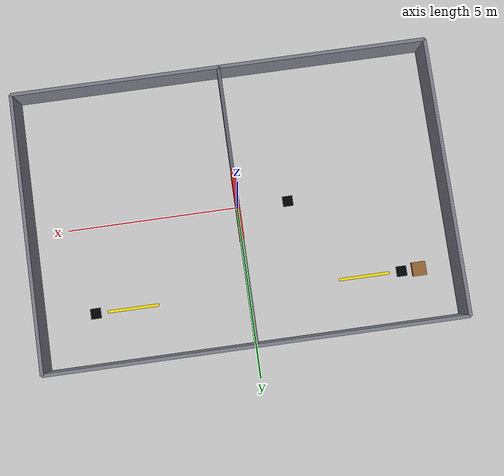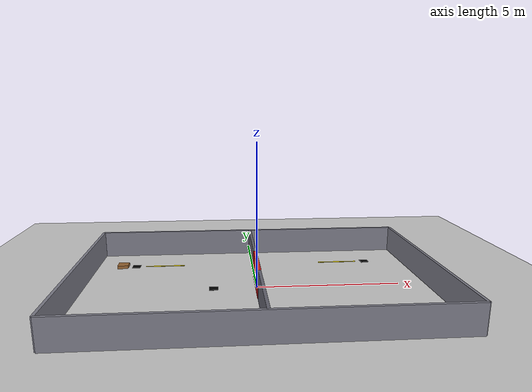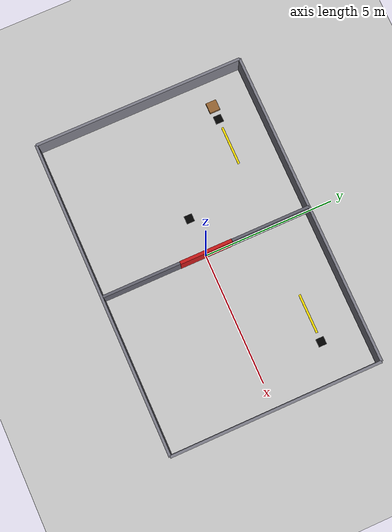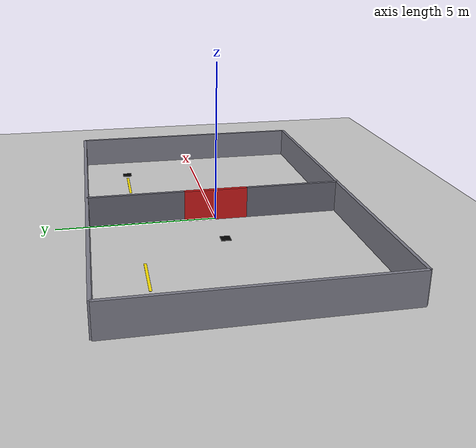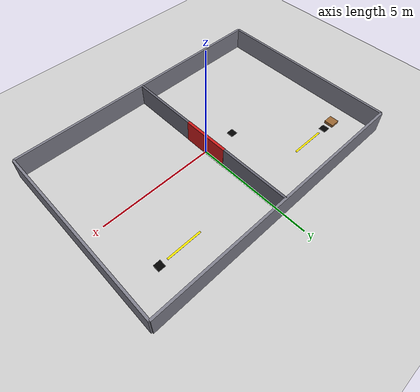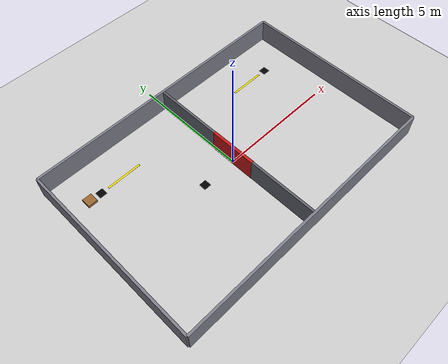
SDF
<?xml version="1.0"?>
<sdf version="1.7">
  <world name="factory">

    <include><uri>model://sun</uri></include>
    <include><uri>model://ground_plane</uri></include>

    <scene><ambient>0.6 0.6 0.6 1</ambient><background>0.7 0.7 0.7 1</background></scene>

    <physics name="default" type="ode">
      <max_step_size>0.004</max_step_size>
      <real_time_factor>1.0</real_time_factor>
    </physics>

    <!-- ============ Dis duvarlar (12m x 8m saha) ============ -->
    <model name="walls">
      <static>true</static>
      <link name="link">
        <!-- kuzey -->
        <collision name="n_c"><pose>0 4 0.5 0 0 0</pose>
          <geometry><box><size>12 0.1 1</size></box></geometry></collision>
        <visual name="n_v"><pose>0 4 0.5 0 0 0</pose>
          <geometry><box><size>12 0.1 1</size></box></geometry>
          <material><ambient>0.5 0.5 0.55 1</ambient></material></visual>
        <!-- guney -->
        <collision name="s_c"><pose>0 -4 0.5 0 0 0</pose>
          <geometry><box><size>12 0.1 1</size></box></geometry></collision>
        <visual name="s_v"><pose>0 -4 0.5 0 0 0</pose>
          <geometry><box><size>12 0.1 1</size></box></geometry>
          <material><ambient>0.5 0.5 0.55 1</ambient></material></visual>
        <!-- bati -->
        <collision name="w_c"><pose>-6 0 0.5 0 0 0</pose>
          <geometry><box><size>0.1 8 1</size></box></geometry></collision>
        <visual name="w_v"><pose>-6 0 0.5 0 0 0</pose>
          <geometry><box><size>0.1 8 1</size></box></geometry>
          <material><ambient>0.5 0.5 0.55 1</ambient></material></visual>
        <!-- dogu -->
        <collision name="e_c"><pose>6 0 0.5 0 0 0</pose>
          <geometry><box><size>0.1 8 1</size></box></geometry></collision>
        <visual name="e_v"><pose>6 0 0.5 0 0 0</pose>
          <geometry><box><size>0.1 8 1</size></box></geometry>
          <material><ambient>0.5 0.5 0.55 1</ambient></material></visual>
      </link>
    </model>

    <!-- ============ Ic bolme + kapi cercevesi (orta duvar, ortada bosluk) ============ -->
    <model name="partition">
      <static>true</static>
      <link name="link">
        <collision name="p1_c"><pose>0 2.5 0.5 0 0 0</pose>
          <geometry><box><size>0.1 3 1</size></box></geometry></collision>
        <visual name="p1_v"><pose>0 2.5 0.5 0 0 0</pose>
          <geometry><box><size>0.1 3 1</size></box></geometry>
          <material><ambient>0.4 0.4 0.45 1</ambient></material></visual>
        <collision name="p2_c"><pose>0 -2.5 0.5 0 0 0</pose>
          <geometry><box><size>0.1 3 1</size></box></geometry></collision>
        <visual name="p2_v"><pose>0 -2.5 0.5 0 0 0</pose>
          <geometry><box><size>0.1 3 1</size></box></geometry>
          <material><ambient>0.4 0.4 0.45 1</ambient></material></visual>
      </link>
    </model>

    <!-- ============ Kontrollu kapi (PLC ile kontrol; prismatic surgu) ============ -->
    <model name="controlled_door">
      <pose>0 0 0.5 0 0 0</pose>
      <link name="door_link">
        <collision name="c"><geometry><box><size>0.12 2 1</size></box></geometry></collision>
        <visual name="v"><geometry><box><size>0.12 2 1</size></box></geometry>
          <material><ambient>0.8 0.1 0.1 1</ambient></material></visual>
        <inertial><mass>10</mass>
          <inertia ixx="3.5" ixy="0" ixz="0" iyy="0.1" iyz="0" izz="3.5"/></inertial>
      </link>
      <joint name="door_slide" type="prismatic">
        <parent>world</parent><child>door_link</child>
        <axis><xyz>0 1 0</xyz><limit><lower>0</lower><upper>2.0</upper></limit></axis>
      </joint>
      <!-- /factory_door/cmd (std_msgs/Float64) ile kapi acilip kapanir -->
      <plugin name="door_ctrl" filename="libgazebo_ros_joint_pose_trajectory.so">
        <ros><namespace>/factory_door</namespace></ros>
        <update_rate>20</update_rate>
      </plugin>
    </model>

    <!-- ============ Yere monte QR kod isaretcileri (gorsel kutucuk) ============ -->
    <!-- Gercekte ArUco texture'li duzlemler kullanilir; burada konum referansi -->
    <model name="qr_pickup_1"><static>true</static><pose>-4.5 2.5 0.01 0 0 0</pose>
      <link name="l"><visual name="v"><geometry><box><size>0.3 0.3 0.02</size></box></geometry>
        <material><ambient>0 0 0 1</ambient></material></visual></link></model>
    <model name="qr_dropoff_1"><static>true</static><pose>4.5 2.5 0.01 0 0 0</pose>
      <link name="l"><visual name="v"><geometry><box><size>0.3 0.3 0.02</size></box></geometry>
        <material><ambient>0 0 0 1</ambient></material></visual></link></model>
    <model name="qr_door_q5"><static>true</static><pose>-1.5 0 0.01 0 0 0</pose>
      <link name="l"><visual name="v"><geometry><box><size>0.3 0.3 0.02</size></box></geometry>
        <material><ambient>0 0 0 1</ambient></material></visual></link></model>

    <!-- ============ Yer cizgileri (hassas konumlanma icin renkli serit) ============ -->
    <model name="line_pickup"><static>true</static><pose>-3.4 2.5 0.005 0 0 0</pose>
      <link name="l"><visual name="v"><geometry><box><size>1.5 0.08 0.005</size></box></geometry>
        <material><ambient>1 0.9 0 1</ambient></material></visual></link></model>
    <model name="line_dropoff"><static>true</static><pose>3.4 2.5 0.005 0 0 0</pose>
      <link name="l"><visual name="v"><geometry><box><size>1.5 0.08 0.005</size></box></geometry>
        <material><ambient>1 0.9 0 1</ambient></material></visual></link></model>

    <!-- ============ Palet (alma noktasinda, ~5kg sembolik yuk) ============ -->
    <model name="pallet_load"><pose>-5.0 2.5 0.06 0 0 0</pose>
      <link name="l">
        <inertial><mass>5</mass>
          <inertia ixx="0.05" ixy="0" ixz="0" iyy="0.05" iyz="0" izz="0.05"/></inertial>
        <collision name="c"><geometry><box><size>0.4 0.4 0.12</size></box></geometry></collision>
        <visual name="v"><geometry><box><size>0.4 0.4 0.12</size></box></geometry>
          <material><ambient>0.6 0.4 0.2 1</ambient></material></visual>
      </link>
    </model>

  </world>
</sdf>
